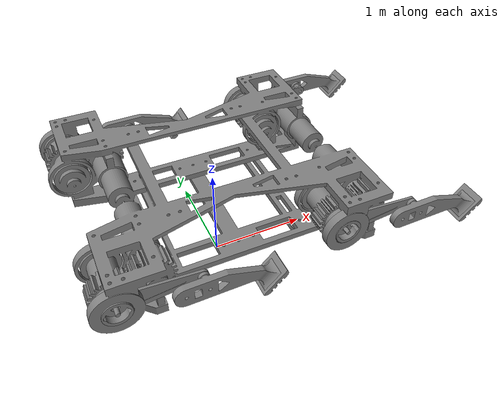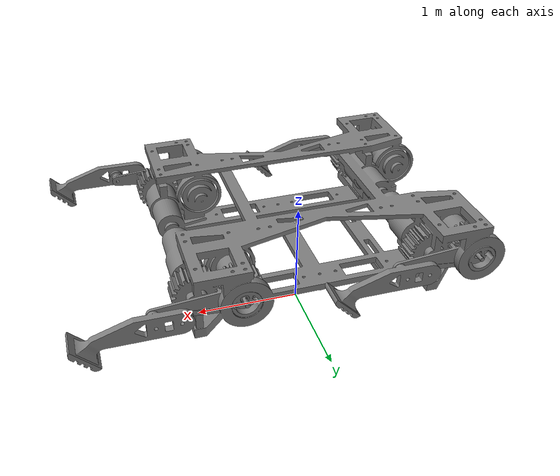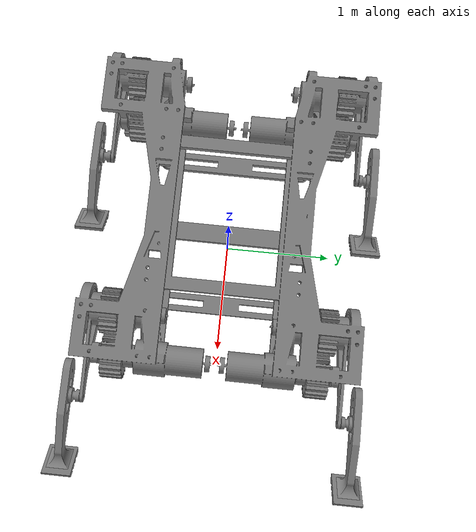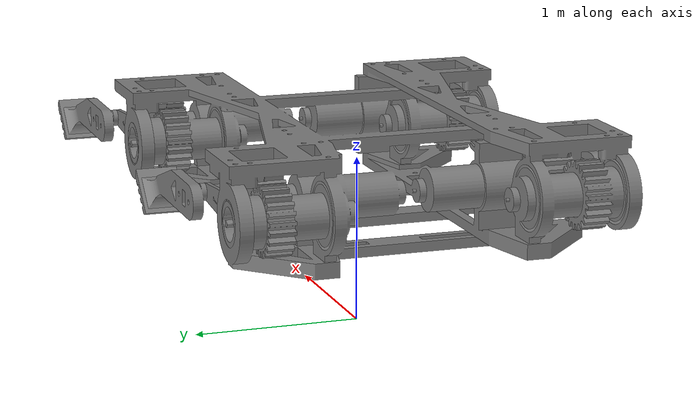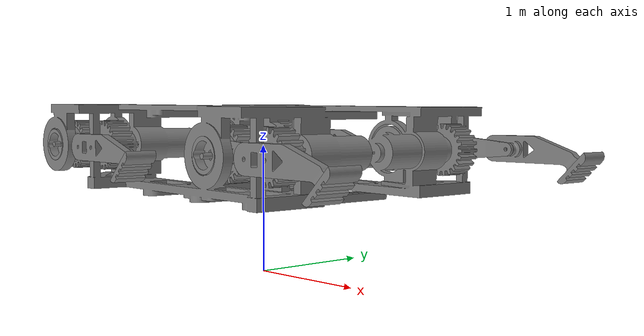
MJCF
<mujoco model="robot_leg">
	<compiler angle="radian" meshdir="assets" autolimits="true"/>
	<option cone="elliptic" impratio="100"/>
	<option gravity="0 0 -9.81"/>

	<default>
		<geom type="mesh" xyaxes="1 0 0 0 1 0"/>
		<default class="our_robot">
			<geom friction="0.6" margin="0.001" condim="1"/>
			<joint damping="2" armature="0.01" frictionloss="0.2"/>
			<position kp="100" forcerange="-14.7 14.7"/>
			<default class="tigh">
				<joint range="0 3.14" axis="0 1 0"/>
				<position ctrlrange=".349 3.14"/>
			</default>
			<default class="knee">
				<joint range="-2.6816 0" axis="0 1 0"/>
				<position forcerange="-14.55 14.55" ctrlrange="-2.6816 0"/>
			</default>
			  <default class="paw">
				<geom mass=".100" priority="1" solimp="0.015 1 0.023" condim="6"
				friction="1.5 1.5 .01"/>
			</default>
		</default>
    </default>

	<asset>
		<material name="dark" rgba="90 7 0.1 1"/>
		<mesh name="rigth_calf_mesh" file="rigth_calf.stl" scale=".01 .01 .01" />
		<mesh name="left_calf_mesh" file="left_calf.stl" scale=".01 .01 .01" />
		<mesh name="left_tigh_mesh" file="left_tigh_mesh.stl" scale=".01 .01 .01" />
		<mesh name="rigth_tigh_mesh" file="rigth_tigh_mesh.stl" scale=".01 .01 .01" />
		<mesh name="paw" file="paw.stl" scale=".01 .01 .01"/>
		<mesh name="chasis" file="chasis.stl" scale=".01 .01 .01" />
	</asset>

	<worldbody>
		<body name="trunk" childclass="our_robot" pos="0 0 1">
			<camera name="tracking" mode="trackcom" pos="0 -1 0.8" xyaxes="1 0 0 0 1 1"/>
			<geom contype="0" conaffinity="0" mesh="chasis" mass="1.157"/>
			<joint type="free"/>

			<body name="FL_tigh" pos=".92 1.02 -.01">
				<geom mesh="left_tigh_mesh" mass=".01377"/>
				<joint class="tigh" name="FL_tigh_joint" pos="-.1 0 0"/>
				<body name="FL_calf" pos=".665 .120 -.010">
					<geom mesh="left_calf_mesh" mass=".01036"/>
					<joint class="knee" name="FL_knee_joint" pos="-.03 0 .01"/>
					<body name="FL_paw" pos=".52 .05 -.12" quat="0 -0.38268343 0 0.92387953" >
						<geom mesh="paw" class="paw"/>
					</body>
				</body>
			</body>

			<body name="FR_tigh" pos=".92 -1.03 -.01">
				<geom mesh="rigth_tigh_mesh" mass=".01377"/>
				<joint class="tigh" name="FR_tigh_joint" pos="-.1 0 0"/>
				<body name="FR_calf" pos=".665 -.080 -.010">
					<geom mesh="rigth_calf_mesh" mass=".01036"/>
					<joint class="knee" name="FR_knee_joint" pos="-.03 0 .01"/>
					<body name="FR_paw" pos=".52 -.095 -.12" quat="0 -0.38268343 0 0.92387953">
						<geom mesh="paw" class="paw"/>
					</body>
				</body>
			</body>

			<body name="BL_tigh" pos="-1.15 1.02 0">
				<geom mesh="left_tigh_mesh" mass=".01377"/>
				<joint class="tigh" name="BL_tigh_joint" pos="-.1 0 0"/>
				<body name="BL_calf" pos=".665 .120 -.010">
					<geom mesh="left_calf_mesh" mass=".01036"/>
					<joint class="knee" name="BL_knee_joint" pos="-.03 0 .01"/>
					<body name="BL_paw" pos=".52 .05 -.12" quat="0 -0.38268343 0 0.92387953" >
						<geom mesh="paw" class="paw"/>
					</body>
				</body>
			</body>

			<body name="BR_tigh" pos="-1.15 -1.03 0">
				<geom mesh="rigth_tigh_mesh" mass=".01377"/>
				<joint class="tigh" name="BR_tigh_joint" pos="-.1 0 0"/>
				<body name="BR_calf" pos=".665 -.080 -.010">
					<geom mesh="rigth_calf_mesh" mass=".01036"/>
					<joint class="knee" name="BR_knee_joint" pos="-.03 0 .01"/>
					<body name="BR_paw" pos=".52 -.095 -.12" quat="0 -0.38268343 0 0.92387953">
						<geom mesh="paw" class="paw"/>
					</body>
				</body>
			</body>
		</body>

	</worldbody>

	<actuator>
		<position class="tigh" name="FR_tigh_actuator" joint="FR_tigh_joint"/>
		<position class="knee" name="FR_knee_actuator" joint="FR_knee_joint"/>
		<position class="tigh" name="BR_tigh_actuator" joint="BR_tigh_joint"/>
		<position class="knee" name="BR_knee_actuator" joint="BR_knee_joint"/>
		<position class="tigh" name="FL_tigh_actuator" joint="FL_tigh_joint"/>
		<position class="knee" name="FL_knee_actuator" joint="FL_knee_joint"/>
		<position class="tigh" name="BL_tigh_actuator" joint="BL_tigh_joint"/>
		<position class="knee" name="BL_knee_actuator" joint="BL_knee_joint"/>
	</actuator>

	<keyframe>
		<key name="home"
		qpos="0 0 1.0 0 0 0 0 2.94 -2.2 2.62 -1.81 2.92 -2.2 2.62 -1.88"
		ctrl="2.94 -2.2 2.62 -1.81 2.92 -2.2 2.62 -1.88"/>
	</keyframe>
</mujoco>
